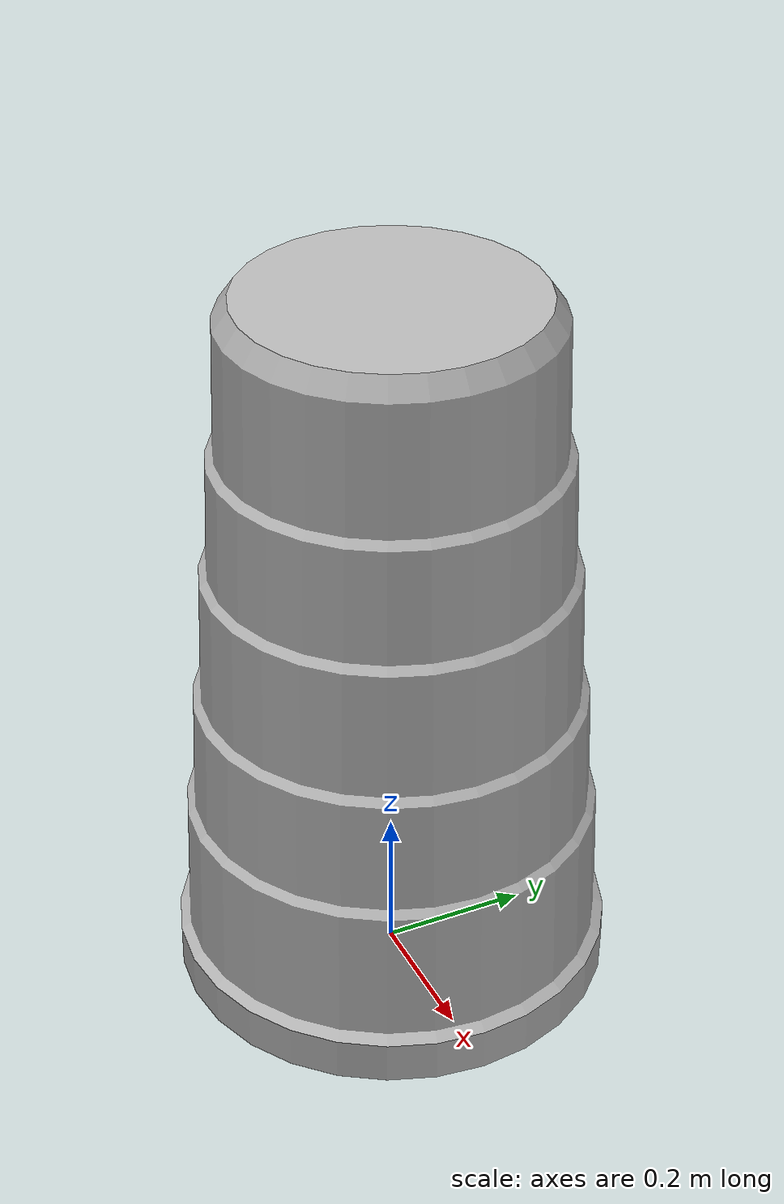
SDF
<?xml version="1.0"?>
<sdf version="1.9">
  <model name="igvc2027_barrel_yellow">
    <link name="link">
      <inertial>
        <pose>0 0 0.336 0 0 0</pose>
        <mass>5.0</mass>
        <inertia><ixx>0.53</ixx><iyy>0.53</iyy><izz>0.22</izz><ixy>0</ixy><ixz>0</ixz><iyz>0</iyz></inertia>
      </inertial>
      <collision name="collision">
        <pose>0 0 0.504 0 0 0</pose>
        <geometry><cylinder><radius>0.298</radius><length>1.008</length></cylinder></geometry>
      </collision>
      <visual name="visual">
        <geometry><mesh><uri>model://igvc2027_barrel_yellow/meshes/barrel.obj</uri></mesh></geometry>
      </visual>
    </link>
  </model>
</sdf>
